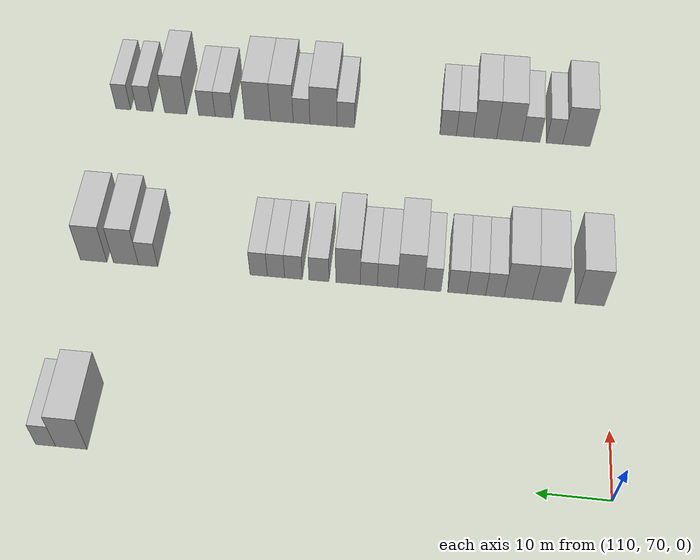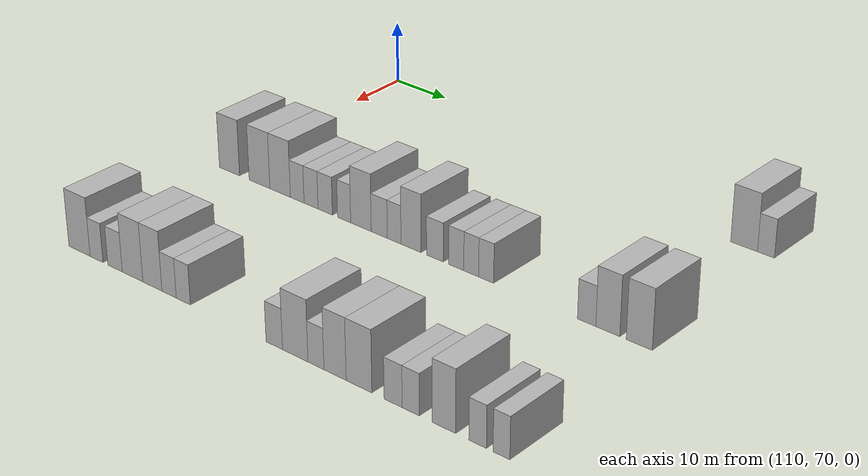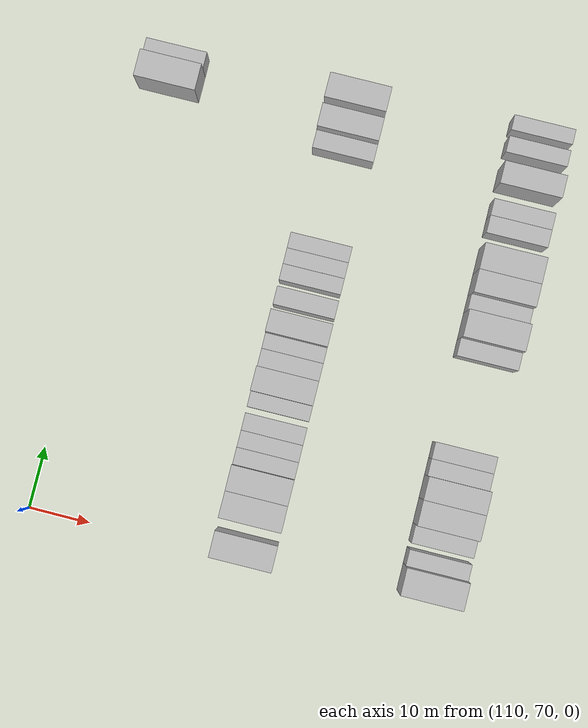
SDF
<sdf version="1.6">
 <world name="default">
  <model name="building_867">
   <static>1</static>
   <pose>115.0000 142.3300 0 0.000000 0.000000 0.000000</pose>
   <link name="link">
    <pose>0 0 4.50 0 0 0</pose>
    <collision name="collision"><geometry><box><size>10.0000 4.3512 9.0000</size></box></geometry></collision>
    <visual name="visual">
     <cast_shadows>0</cast_shadows>
     <geometry><box><size>10.0000 4.3512 9.0000</size></box></geometry>
     <material>
      <script>
       <uri>model://HANNAS_wall/materials/scripts</uri>
       <uri>model://HANNAS_wall/materials/textures</uri>
       <name>vrc/HANNAS_wall</name>
      </script>
     </material>
    </visual>
   </link>
  </model>
  <model name="building_868">
   <static>1</static>
   <pose>115.0000 145.8648 0 0.000000 0.000000 0.000000</pose>
   <link name="link">
    <pose>0 0 3.00 0 0 0</pose>
    <collision name="collision"><geometry><box><size>10.0000 2.7183 6.0000</size></box></geometry></collision>
    <visual name="visual">
     <cast_shadows>0</cast_shadows>
     <geometry><box><size>10.0000 2.7183 6.0000</size></box></geometry>
     <material>
      <script>
       <uri>model://HANNAS_wall/materials/scripts</uri>
       <uri>model://HANNAS_wall/materials/textures</uri>
       <name>vrc/HANNAS_wall</name>
      </script>
     </material>
    </visual>
   </link>
  </model>
  <model name="building_1089">
   <static>1</static>
   <pose>145.0000 72.3151 0 0.000000 0.000000 0.000000</pose>
   <link name="link">
    <pose>0 0 4.50 0 0 0</pose>
    <collision name="collision"><geometry><box><size>10.0000 4.2190 9.0000</size></box></geometry></collision>
    <visual name="visual">
     <cast_shadows>0</cast_shadows>
     <geometry><box><size>10.0000 4.2190 9.0000</size></box></geometry>
     <material>
      <script>
       <uri>model://HANNAS_wall/materials/scripts</uri>
       <uri>model://HANNAS_wall/materials/textures</uri>
       <name>vrc/HANNAS_wall</name>
      </script>
     </material>
    </visual>
   </link>
  </model>
  <model name="building_1090">
   <static>1</static>
   <pose>145.0000 78.5475 0 0.000000 0.000000 0.000000</pose>
   <link name="link">
    <pose>0 0 4.50 0 0 0</pose>
    <collision name="collision"><geometry><box><size>10.0000 4.2457 9.0000</size></box></geometry></collision>
    <visual name="visual">
     <cast_shadows>0</cast_shadows>
     <geometry><box><size>10.0000 4.2457 9.0000</size></box></geometry>
     <material>
      <script>
       <uri>model://HANNAS_wall/materials/scripts</uri>
       <uri>model://HANNAS_wall/materials/textures</uri>
       <name>vrc/HANNAS_wall</name>
      </script>
     </material>
    </visual>
   </link>
  </model>
  <model name="building_1091">
   <static>1</static>
   <pose>145.0000 82.7354 0 0.000000 0.000000 0.000000</pose>
   <link name="link">
    <pose>0 0 4.50 0 0 0</pose>
    <collision name="collision"><geometry><box><size>10.0000 4.1303 9.0000</size></box></geometry></collision>
    <visual name="visual">
     <cast_shadows>0</cast_shadows>
     <geometry><box><size>10.0000 4.1303 9.0000</size></box></geometry>
     <material>
      <script>
       <uri>model://HANNAS_wall/materials/scripts</uri>
       <uri>model://HANNAS_wall/materials/textures</uri>
       <name>vrc/HANNAS_wall</name>
      </script>
     </material>
    </visual>
   </link>
  </model>
  <model name="building_1092">
   <static>1</static>
   <pose>145.0000 86.1641 0 0.000000 0.000000 0.000000</pose>
   <link name="link">
    <pose>0 0 3.00 0 0 0</pose>
    <collision name="collision"><geometry><box><size>10.0000 2.7271 6.0000</size></box></geometry></collision>
    <visual name="visual">
     <cast_shadows>0</cast_shadows>
     <geometry><box><size>10.0000 2.7271 6.0000</size></box></geometry>
     <material>
      <script>
       <uri>model://HANNAS_wall/materials/scripts</uri>
       <uri>model://HANNAS_wall/materials/textures</uri>
       <name>vrc/HANNAS_wall</name>
      </script>
     </material>
    </visual>
   </link>
  </model>
  <model name="building_1093">
   <static>1</static>
   <pose>145.0000 88.8950 0 0.000000 0.000000 0.000000</pose>
   <link name="link">
    <pose>0 0 3.00 0 0 0</pose>
    <collision name="collision"><geometry><box><size>10.0000 2.7347 6.0000</size></box></geometry></collision>
    <visual name="visual">
     <cast_shadows>0</cast_shadows>
     <geometry><box><size>10.0000 2.7347 6.0000</size></box></geometry>
     <material>
      <script>
       <uri>model://HANNAS_wall/materials/scripts</uri>
       <uri>model://HANNAS_wall/materials/textures</uri>
       <name>vrc/HANNAS_wall</name>
      </script>
     </material>
    </visual>
   </link>
  </model>
  <model name="building_1094">
   <static>1</static>
   <pose>145.0000 91.6670 0 0.000000 0.000000 0.000000</pose>
   <link name="link">
    <pose>0 0 3.00 0 0 0</pose>
    <collision name="collision"><geometry><box><size>10.0000 2.8094 6.0000</size></box></geometry></collision>
    <visual name="visual">
     <cast_shadows>0</cast_shadows>
     <geometry><box><size>10.0000 2.8094 6.0000</size></box></geometry>
     <material>
      <script>
       <uri>model://HANNAS_wall/materials/scripts</uri>
       <uri>model://HANNAS_wall/materials/textures</uri>
       <name>vrc/HANNAS_wall</name>
      </script>
     </material>
    </visual>
   </link>
  </model>
  <model name="building_1095">
   <static>1</static>
   <pose>145.0000 95.3277 0 0.000000 0.000000 0.000000</pose>
   <link name="link">
    <pose>0 0 3.00 0 0 0</pose>
    <collision name="collision"><geometry><box><size>10.0000 2.5120 6.0000</size></box></geometry></collision>
    <visual name="visual">
     <cast_shadows>0</cast_shadows>
     <geometry><box><size>10.0000 2.5120 6.0000</size></box></geometry>
     <material>
      <script>
       <uri>model://HANNAS_wall/materials/scripts</uri>
       <uri>model://HANNAS_wall/materials/textures</uri>
       <name>vrc/HANNAS_wall</name>
      </script>
     </material>
    </visual>
   </link>
  </model>
  <model name="building_1096">
   <static>1</static>
   <pose>145.0000 98.5385 0 0.000000 0.000000 0.000000</pose>
   <link name="link">
    <pose>0 0 4.50 0 0 0</pose>
    <collision name="collision"><geometry><box><size>10.0000 3.9097 9.0000</size></box></geometry></collision>
    <visual name="visual">
     <cast_shadows>0</cast_shadows>
     <geometry><box><size>10.0000 3.9097 9.0000</size></box></geometry>
     <material>
      <script>
       <uri>model://HANNAS_wall/materials/scripts</uri>
       <uri>model://HANNAS_wall/materials/textures</uri>
       <name>vrc/HANNAS_wall</name>
      </script>
     </material>
    </visual>
   </link>
  </model>
  <model name="building_1097">
   <static>1</static>
   <pose>145.0000 101.9868 0 0.000000 0.000000 0.000000</pose>
   <link name="link">
    <pose>0 0 3.00 0 0 0</pose>
    <collision name="collision"><geometry><box><size>10.0000 2.9868 6.0000</size></box></geometry></collision>
    <visual name="visual">
     <cast_shadows>0</cast_shadows>
     <geometry><box><size>10.0000 2.9868 6.0000</size></box></geometry>
     <material>
      <script>
       <uri>model://HANNAS_wall/materials/scripts</uri>
       <uri>model://HANNAS_wall/materials/textures</uri>
       <name>vrc/HANNAS_wall</name>
      </script>
     </material>
    </visual>
   </link>
  </model>
  <model name="building_1098">
   <static>1</static>
   <pose>145.0000 104.7466 0 0.000000 0.000000 0.000000</pose>
   <link name="link">
    <pose>0 0 3.00 0 0 0</pose>
    <collision name="collision"><geometry><box><size>10.0000 2.5329 6.0000</size></box></geometry></collision>
    <visual name="visual">
     <cast_shadows>0</cast_shadows>
     <geometry><box><size>10.0000 2.5329 6.0000</size></box></geometry>
     <material>
      <script>
       <uri>model://HANNAS_wall/materials/scripts</uri>
       <uri>model://HANNAS_wall/materials/textures</uri>
       <name>vrc/HANNAS_wall</name>
      </script>
     </material>
    </visual>
   </link>
  </model>
  <model name="building_1099">
   <static>1</static>
   <pose>145.0000 107.8368 0 0.000000 0.000000 0.000000</pose>
   <link name="link">
    <pose>0 0 4.50 0 0 0</pose>
    <collision name="collision"><geometry><box><size>10.0000 3.6474 9.0000</size></box></geometry></collision>
    <visual name="visual">
     <cast_shadows>0</cast_shadows>
     <geometry><box><size>10.0000 3.6474 9.0000</size></box></geometry>
     <material>
      <script>
       <uri>model://HANNAS_wall/materials/scripts</uri>
       <uri>model://HANNAS_wall/materials/textures</uri>
       <name>vrc/HANNAS_wall</name>
      </script>
     </material>
    </visual>
   </link>
  </model>
  <model name="building_1100">
   <static>1</static>
   <pose>145.0000 112.1522 0 0.000000 0.000000 0.000000</pose>
   <link name="link">
    <pose>0 0 3.00 0 0 0</pose>
    <collision name="collision"><geometry><box><size>10.0000 2.9833 6.0000</size></box></geometry></collision>
    <visual name="visual">
     <cast_shadows>0</cast_shadows>
     <geometry><box><size>10.0000 2.9833 6.0000</size></box></geometry>
     <material>
      <script>
       <uri>model://HANNAS_wall/materials/scripts</uri>
       <uri>model://HANNAS_wall/materials/textures</uri>
       <name>vrc/HANNAS_wall</name>
      </script>
     </material>
    </visual>
   </link>
  </model>
  <model name="building_1101">
   <static>1</static>
   <pose>145.0000 115.9627 0 0.000000 0.000000 0.000000</pose>
   <link name="link">
    <pose>0 0 3.00 0 0 0</pose>
    <collision name="collision"><geometry><box><size>10.0000 2.6378 6.0000</size></box></geometry></collision>
    <visual name="visual">
     <cast_shadows>0</cast_shadows>
     <geometry><box><size>10.0000 2.6378 6.0000</size></box></geometry>
     <material>
      <script>
       <uri>model://HANNAS_wall/materials/scripts</uri>
       <uri>model://HANNAS_wall/materials/textures</uri>
       <name>vrc/HANNAS_wall</name>
      </script>
     </material>
    </visual>
   </link>
  </model>
  <model name="building_1102">
   <static>1</static>
   <pose>145.0000 118.5755 0 0.000000 0.000000 0.000000</pose>
   <link name="link">
    <pose>0 0 3.00 0 0 0</pose>
    <collision name="collision"><geometry><box><size>10.0000 2.5877 6.0000</size></box></geometry></collision>
    <visual name="visual">
     <cast_shadows>0</cast_shadows>
     <geometry><box><size>10.0000 2.5877 6.0000</size></box></geometry>
     <material>
      <script>
       <uri>model://HANNAS_wall/materials/scripts</uri>
       <uri>model://HANNAS_wall/materials/textures</uri>
       <name>vrc/HANNAS_wall</name>
      </script>
     </material>
    </visual>
   </link>
  </model>
  <model name="building_1103">
   <static>1</static>
   <pose>145.0000 121.1624 0 0.000000 0.000000 0.000000</pose>
   <link name="link">
    <pose>0 0 3.00 0 0 0</pose>
    <collision name="collision"><geometry><box><size>10.0000 2.5861 6.0000</size></box></geometry></collision>
    <visual name="visual">
     <cast_shadows>0</cast_shadows>
     <geometry><box><size>10.0000 2.5861 6.0000</size></box></geometry>
     <material>
      <script>
       <uri>model://HANNAS_wall/materials/scripts</uri>
       <uri>model://HANNAS_wall/materials/textures</uri>
       <name>vrc/HANNAS_wall</name>
      </script>
     </material>
    </visual>
   </link>
  </model>
  <model name="building_1104">
   <static>1</static>
   <pose>145.0000 137.8683 0 0.000000 0.000000 0.000000</pose>
   <link name="link">
    <pose>0 0 3.00 0 0 0</pose>
    <collision name="collision"><geometry><box><size>10.0000 2.9419 6.0000</size></box></geometry></collision>
    <visual name="visual">
     <cast_shadows>0</cast_shadows>
     <geometry><box><size>10.0000 2.9419 6.0000</size></box></geometry>
     <material>
      <script>
       <uri>model://HANNAS_wall/materials/scripts</uri>
       <uri>model://HANNAS_wall/materials/textures</uri>
       <name>vrc/HANNAS_wall</name>
      </script>
     </material>
    </visual>
   </link>
  </model>
  <model name="building_1105">
   <static>1</static>
   <pose>145.0000 141.2345 0 0.000000 0.000000 0.000000</pose>
   <link name="link">
    <pose>0 0 4.50 0 0 0</pose>
    <collision name="collision"><geometry><box><size>10.0000 3.7904 9.0000</size></box></geometry></collision>
    <visual name="visual">
     <cast_shadows>0</cast_shadows>
     <geometry><box><size>10.0000 3.7904 9.0000</size></box></geometry>
     <material>
      <script>
       <uri>model://HANNAS_wall/materials/scripts</uri>
       <uri>model://HANNAS_wall/materials/textures</uri>
       <name>vrc/HANNAS_wall</name>
      </script>
     </material>
    </visual>
   </link>
  </model>
  <model name="building_1106">
   <static>1</static>
   <pose>145.0000 146.1477 0 0.000000 0.000000 0.000000</pose>
   <link name="link">
    <pose>0 0 4.50 0 0 0</pose>
    <collision name="collision"><geometry><box><size>10.0000 4.0360 9.0000</size></box></geometry></collision>
    <visual name="visual">
     <cast_shadows>0</cast_shadows>
     <geometry><box><size>10.0000 4.0360 9.0000</size></box></geometry>
     <material>
      <script>
       <uri>model://HANNAS_wall/materials/scripts</uri>
       <uri>model://HANNAS_wall/materials/textures</uri>
       <name>vrc/HANNAS_wall</name>
      </script>
     </material>
    </visual>
   </link>
  </model>
  <model name="building_1320">
   <static>1</static>
   <pose>175.0000 73.8762 0 0.000000 0.000000 0.000000</pose>
   <link name="link">
    <pose>0 0 4.50 0 0 0</pose>
    <collision name="collision"><geometry><box><size>10.0000 4.3850 9.0000</size></box></geometry></collision>
    <visual name="visual">
     <cast_shadows>0</cast_shadows>
     <geometry><box><size>10.0000 4.3850 9.0000</size></box></geometry>
     <material>
      <script>
       <uri>model://HANNAS_wall/materials/scripts</uri>
       <uri>model://HANNAS_wall/materials/textures</uri>
       <name>vrc/HANNAS_wall</name>
      </script>
     </material>
    </visual>
   </link>
  </model>
  <model name="building_1321">
   <static>1</static>
   <pose>175.0000 77.3866 0 0.000000 0.000000 0.000000</pose>
   <link name="link">
    <pose>0 0 3.00 0 0 0</pose>
    <collision name="collision"><geometry><box><size>10.0000 2.6357 6.0000</size></box></geometry></collision>
    <visual name="visual">
     <cast_shadows>0</cast_shadows>
     <geometry><box><size>10.0000 2.6357 6.0000</size></box></geometry>
     <material>
      <script>
       <uri>model://HANNAS_wall/materials/scripts</uri>
       <uri>model://HANNAS_wall/materials/textures</uri>
       <name>vrc/HANNAS_wall</name>
      </script>
     </material>
    </visual>
   </link>
  </model>
  <model name="building_1322">
   <static>1</static>
   <pose>175.0000 81.1559 0 0.000000 0.000000 0.000000</pose>
   <link name="link">
    <pose>0 0 3.00 0 0 0</pose>
    <collision name="collision"><geometry><box><size>10.0000 2.9029 6.0000</size></box></geometry></collision>
    <visual name="visual">
     <cast_shadows>0</cast_shadows>
     <geometry><box><size>10.0000 2.9029 6.0000</size></box></geometry>
     <material>
      <script>
       <uri>model://HANNAS_wall/materials/scripts</uri>
       <uri>model://HANNAS_wall/materials/textures</uri>
       <name>vrc/HANNAS_wall</name>
      </script>
     </material>
    </visual>
   </link>
  </model>
  <model name="building_1323">
   <static>1</static>
   <pose>175.0000 84.6501 0 0.000000 0.000000 0.000000</pose>
   <link name="link">
    <pose>0 0 4.50 0 0 0</pose>
    <collision name="collision"><geometry><box><size>10.0000 4.0855 9.0000</size></box></geometry></collision>
    <visual name="visual">
     <cast_shadows>0</cast_shadows>
     <geometry><box><size>10.0000 4.0855 9.0000</size></box></geometry>
     <material>
      <script>
       <uri>model://HANNAS_wall/materials/scripts</uri>
       <uri>model://HANNAS_wall/materials/textures</uri>
       <name>vrc/HANNAS_wall</name>
      </script>
     </material>
    </visual>
   </link>
  </model>
  <model name="building_1324">
   <static>1</static>
   <pose>175.0000 88.5554 0 0.000000 0.000000 0.000000</pose>
   <link name="link">
    <pose>0 0 4.50 0 0 0</pose>
    <collision name="collision"><geometry><box><size>10.0000 3.7250 9.0000</size></box></geometry></collision>
    <visual name="visual">
     <cast_shadows>0</cast_shadows>
     <geometry><box><size>10.0000 3.7250 9.0000</size></box></geometry>
     <material>
      <script>
       <uri>model://HANNAS_wall/materials/scripts</uri>
       <uri>model://HANNAS_wall/materials/textures</uri>
       <name>vrc/HANNAS_wall</name>
      </script>
     </material>
    </visual>
   </link>
  </model>
  <model name="building_1325">
   <static>1</static>
   <pose>175.0000 91.7970 0 0.000000 0.000000 0.000000</pose>
   <link name="link">
    <pose>0 0 3.00 0 0 0</pose>
    <collision name="collision"><geometry><box><size>10.0000 2.7583 6.0000</size></box></geometry></collision>
    <visual name="visual">
     <cast_shadows>0</cast_shadows>
     <geometry><box><size>10.0000 2.7583 6.0000</size></box></geometry>
     <material>
      <script>
       <uri>model://HANNAS_wall/materials/scripts</uri>
       <uri>model://HANNAS_wall/materials/textures</uri>
       <name>vrc/HANNAS_wall</name>
      </script>
     </material>
    </visual>
   </link>
  </model>
  <model name="building_1326">
   <static>1</static>
   <pose>175.0000 94.5214 0 0.000000 0.000000 0.000000</pose>
   <link name="link">
    <pose>0 0 3.00 0 0 0</pose>
    <collision name="collision"><geometry><box><size>10.0000 2.6905 6.0000</size></box></geometry></collision>
    <visual name="visual">
     <cast_shadows>0</cast_shadows>
     <geometry><box><size>10.0000 2.6905 6.0000</size></box></geometry>
     <material>
      <script>
       <uri>model://HANNAS_wall/materials/scripts</uri>
       <uri>model://HANNAS_wall/materials/textures</uri>
       <name>vrc/HANNAS_wall</name>
      </script>
     </material>
    </visual>
   </link>
  </model>
  <model name="building_1327">
   <static>1</static>
   <pose>175.0000 111.2219 0 0.000000 0.000000 0.000000</pose>
   <link name="link">
    <pose>0 0 3.00 0 0 0</pose>
    <collision name="collision"><geometry><box><size>10.0000 2.9035 6.0000</size></box></geometry></collision>
    <visual name="visual">
     <cast_shadows>0</cast_shadows>
     <geometry><box><size>10.0000 2.9035 6.0000</size></box></geometry>
     <material>
      <script>
       <uri>model://HANNAS_wall/materials/scripts</uri>
       <uri>model://HANNAS_wall/materials/textures</uri>
       <name>vrc/HANNAS_wall</name>
      </script>
     </material>
    </visual>
   </link>
  </model>
  <model name="building_1328">
   <static>1</static>
   <pose>175.0000 114.8919 0 0.000000 0.000000 0.000000</pose>
   <link name="link">
    <pose>0 0 4.50 0 0 0</pose>
    <collision name="collision"><geometry><box><size>10.0000 4.4366 9.0000</size></box></geometry></collision>
    <visual name="visual">
     <cast_shadows>0</cast_shadows>
     <geometry><box><size>10.0000 4.4366 9.0000</size></box></geometry>
     <material>
      <script>
       <uri>model://HANNAS_wall/materials/scripts</uri>
       <uri>model://HANNAS_wall/materials/textures</uri>
       <name>vrc/HANNAS_wall</name>
      </script>
     </material>
    </visual>
   </link>
  </model>
  <model name="building_1329">
   <static>1</static>
   <pose>175.0000 118.4751 0 0.000000 0.000000 0.000000</pose>
   <link name="link">
    <pose>0 0 3.00 0 0 0</pose>
    <collision name="collision"><geometry><box><size>10.0000 2.7298 6.0000</size></box></geometry></collision>
    <visual name="visual">
     <cast_shadows>0</cast_shadows>
     <geometry><box><size>10.0000 2.7298 6.0000</size></box></geometry>
     <material>
      <script>
       <uri>model://HANNAS_wall/materials/scripts</uri>
       <uri>model://HANNAS_wall/materials/textures</uri>
       <name>vrc/HANNAS_wall</name>
      </script>
     </material>
    </visual>
   </link>
  </model>
  <model name="building_1330">
   <static>1</static>
   <pose>175.0000 121.7104 0 0.000000 0.000000 0.000000</pose>
   <link name="link">
    <pose>0 0 4.50 0 0 0</pose>
    <collision name="collision"><geometry><box><size>10.0000 3.7407 9.0000</size></box></geometry></collision>
    <visual name="visual">
     <cast_shadows>0</cast_shadows>
     <geometry><box><size>10.0000 3.7407 9.0000</size></box></geometry>
     <material>
      <script>
       <uri>model://HANNAS_wall/materials/scripts</uri>
       <uri>model://HANNAS_wall/materials/textures</uri>
       <name>vrc/HANNAS_wall</name>
      </script>
     </material>
    </visual>
   </link>
  </model>
  <model name="building_1331">
   <static>1</static>
   <pose>175.0000 125.7102 0 0.000000 0.000000 0.000000</pose>
   <link name="link">
    <pose>0 0 4.50 0 0 0</pose>
    <collision name="collision"><geometry><box><size>10.0000 4.2590 9.0000</size></box></geometry></collision>
    <visual name="visual">
     <cast_shadows>0</cast_shadows>
     <geometry><box><size>10.0000 4.2590 9.0000</size></box></geometry>
     <material>
      <script>
       <uri>model://HANNAS_wall/materials/scripts</uri>
       <uri>model://HANNAS_wall/materials/textures</uri>
       <name>vrc/HANNAS_wall</name>
      </script>
     </material>
    </visual>
   </link>
  </model>
  <model name="building_1332">
   <static>1</static>
   <pose>175.0000 131.2894 0 0.000000 0.000000 0.000000</pose>
   <link name="link">
    <pose>0 0 3.00 0 0 0</pose>
    <collision name="collision"><geometry><box><size>10.0000 2.8993 6.0000</size></box></geometry></collision>
    <visual name="visual">
     <cast_shadows>0</cast_shadows>
     <geometry><box><size>10.0000 2.8993 6.0000</size></box></geometry>
     <material>
      <script>
       <uri>model://HANNAS_wall/materials/scripts</uri>
       <uri>model://HANNAS_wall/materials/textures</uri>
       <name>vrc/HANNAS_wall</name>
      </script>
     </material>
    </visual>
   </link>
  </model>
  <model name="building_1333">
   <static>1</static>
   <pose>175.0000 134.1142 0 0.000000 0.000000 0.000000</pose>
   <link name="link">
    <pose>0 0 3.00 0 0 0</pose>
    <collision name="collision"><geometry><box><size>10.0000 2.7503 6.0000</size></box></geometry></collision>
    <visual name="visual">
     <cast_shadows>0</cast_shadows>
     <geometry><box><size>10.0000 2.7503 6.0000</size></box></geometry>
     <material>
      <script>
       <uri>model://HANNAS_wall/materials/scripts</uri>
       <uri>model://HANNAS_wall/materials/textures</uri>
       <name>vrc/HANNAS_wall</name>
      </script>
     </material>
    </visual>
   </link>
  </model>
  <model name="building_1334">
   <static>1</static>
   <pose>175.0000 139.3212 0 0.000000 0.000000 0.000000</pose>
   <link name="link">
    <pose>0 0 4.50 0 0 0</pose>
    <collision name="collision"><geometry><box><size>10.0000 3.6637 9.0000</size></box></geometry></collision>
    <visual name="visual">
     <cast_shadows>0</cast_shadows>
     <geometry><box><size>10.0000 3.6637 9.0000</size></box></geometry>
     <material>
      <script>
       <uri>model://HANNAS_wall/materials/scripts</uri>
       <uri>model://HANNAS_wall/materials/textures</uri>
       <name>vrc/HANNAS_wall</name>
      </script>
     </material>
    </visual>
   </link>
  </model>
  <model name="building_1335">
   <static>1</static>
   <pose>175.0000 144.4910 0 0.000000 0.000000 0.000000</pose>
   <link name="link">
    <pose>0 0 3.00 0 0 0</pose>
    <collision name="collision"><geometry><box><size>10.0000 2.6759 6.0000</size></box></geometry></collision>
    <visual name="visual">
     <cast_shadows>0</cast_shadows>
     <geometry><box><size>10.0000 2.6759 6.0000</size></box></geometry>
     <material>
      <script>
       <uri>model://HANNAS_wall/materials/scripts</uri>
       <uri>model://HANNAS_wall/materials/textures</uri>
       <name>vrc/HANNAS_wall</name>
      </script>
     </material>
    </visual>
   </link>
  </model>
  <model name="building_1336">
   <static>1</static>
   <pose>175.0000 148.0746 0 0.000000 0.000000 0.000000</pose>
   <link name="link">
    <pose>0 0 3.00 0 0 0</pose>
    <collision name="collision"><geometry><box><size>10.0000 2.4912 6.0000</size></box></geometry></collision>
    <visual name="visual">
     <cast_shadows>0</cast_shadows>
     <geometry><box><size>10.0000 2.4912 6.0000</size></box></geometry>
     <material>
      <script>
       <uri>model://HANNAS_wall/materials/scripts</uri>
       <uri>model://HANNAS_wall/materials/textures</uri>
       <name>vrc/HANNAS_wall</name>
      </script>
     </material>
    </visual>
   </link>
  </model>
 </world>
</sdf>
